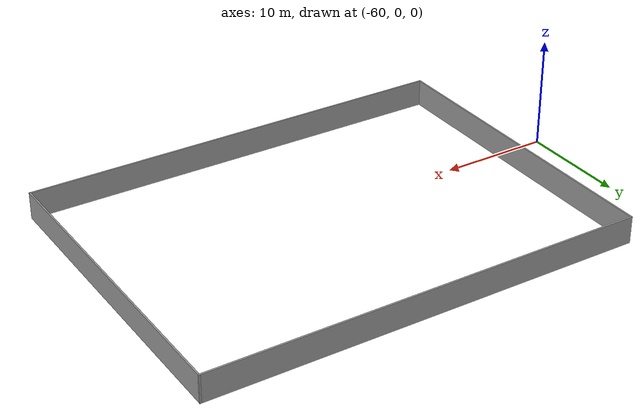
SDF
<?xml version='1.0'?>
<sdf version='1.6'>
  <model name='empty_room_big'>
    <pose frame=''>-35.3309 2.75705 0 0 -0 0</pose>
    <link name='Wall_1'>
      <collision name='Wall_1_Collision'>
        <geometry>
          <box>
            <size>30 0.15 2.5</size>
          </box>
        </geometry>
        <pose frame=''>0 0 1.25 0 -0 0</pose>
      </collision>
      <visual name='Wall_1_Visual'>
        <pose frame=''>0 0 1.25 0 -0 0</pose>
        <geometry>
          <box>
            <size>30 0.15 2.5</size>
          </box>
        </geometry>
        <material>
          <script>
            <uri>file://media/materials/scripts/gazebo.material</uri>
            <name>Gazebo/Grey</name>
          </script>
          <ambient>1 1 1 1</ambient>
        </material>
        <meta>
          <layer>0</layer>
        </meta>
      </visual>
      <pose frame=''>-19.925 0 0 0 -0 -1.5708</pose>
    </link>
    <link name='Wall_2'>
      <collision name='Wall_2_Collision'>
        <geometry>
          <box>
            <size>40 0.15 2.5</size>
          </box>
        </geometry>
        <pose frame=''>0 0 1.25 0 -0 0</pose>
      </collision>
      <visual name='Wall_2_Visual'>
        <pose frame=''>0 0 1.25 0 -0 0</pose>
        <geometry>
          <box>
            <size>40 0.15 2.5</size>
          </box>
        </geometry>
        <material>
          <script>
            <uri>file://media/materials/scripts/gazebo.material</uri>
            <name>Gazebo/Grey</name>
          </script>
          <ambient>1 1 1 1</ambient>
        </material>
        <meta>
          <layer>0</layer>
        </meta>
      </visual>
      <pose frame=''>-0 -14.925 0 0 -0 0</pose>
    </link>
    <link name='Wall_3'>
      <collision name='Wall_3_Collision'>
        <geometry>
          <box>
            <size>30 0.15 2.5</size>
          </box>
        </geometry>
        <pose frame=''>0 0 1.25 0 -0 0</pose>
      </collision>
      <visual name='Wall_3_Visual'>
        <pose frame=''>0 0 1.25 0 -0 0</pose>
        <geometry>
          <box>
            <size>30 0.15 2.5</size>
          </box>
        </geometry>
        <material>
          <script>
            <uri>file://media/materials/scripts/gazebo.material</uri>
            <name>Gazebo/Grey</name>
          </script>
          <ambient>1 1 1 1</ambient>
        </material>
        <meta>
          <layer>0</layer>
        </meta>
      </visual>
      <pose frame=''>19.925 0 0 0 -0 1.5708</pose>
    </link>
    <link name='Wall_4'>
      <collision name='Wall_4_Collision'>
        <geometry>
          <box>
            <size>40 0.15 2.5</size>
          </box>
        </geometry>
        <pose frame=''>0 0 1.25 0 -0 0</pose>
      </collision>
      <visual name='Wall_4_Visual'>
        <pose frame=''>0 0 1.25 0 -0 0</pose>
        <geometry>
          <box>
            <size>40 0.15 2.5</size>
          </box>
        </geometry>
        <material>
          <script>
            <uri>file://media/materials/scripts/gazebo.material</uri>
            <name>Gazebo/Grey</name>
          </script>
          <ambient>1 1 1 1</ambient>
        </material>
        <meta>
          <layer>0</layer>
        </meta>
      </visual>
      <pose frame=''>-0 14.925 0 0 -0 3.14159</pose>
    </link>
    <static>1</static>
  </model>
</sdf>
